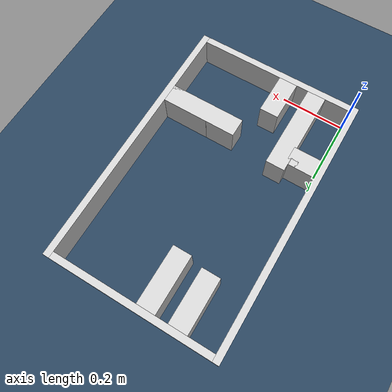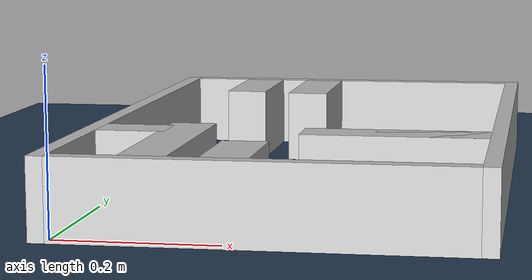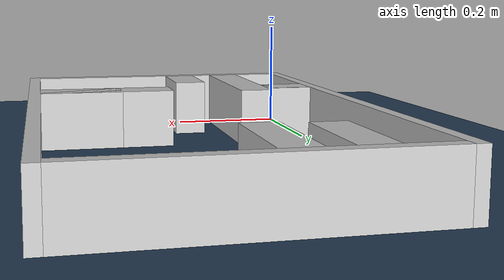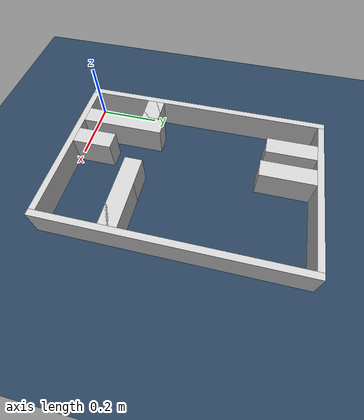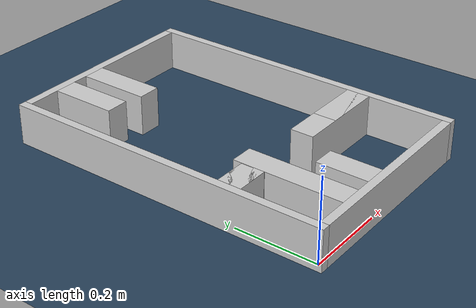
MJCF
<?xml version="1.0" ?>
<mujoco model="generated_real_template">
  <compiler angle="degree"/>
  <option timestep="0.002" integrator="implicitfast" iterations="100" cone="elliptic"/>
  <default>
    <geom density="1"/>
  </default>
  <asset>
    <texture builtin="gradient" height="3072" rgb1="0.3 0.5 0.7" rgb2="0 0 0" type="skybox" width="512"/>
    <texture builtin="checker" height="300" mark="edge" markrgb="0.8 0.8 0.8" name="groundplane" rgb1="0.2 0.3 0.4" rgb2="0.1 0.2 0.3" type="2d" width="300"/>
    <material name="groundplane" reflectance="0.2" texrepeat="5 5" texture="groundplane" texuniform="true"/>
  </asset>
  <worldbody>
    <light dir="0 0 -1" directional="true" pos="0 0 1.5"/>
    <geom name="floor" type="plane" condim="4" friction="0.5 0.005 0.001" material="groundplane" size="0 0 0.05"/>
    <body name="walls">
      <geom name="wall_boundary_left" type="box" condim="4" friction="1.0 0.005 0.0001" rgba="0.8 0.8 0.8 1" pos="-0.010000 0.387500 0.050000" euler="0 0 0.000000" size="0.010000 0.407500 0.050000"/>
      <geom name="wall_boundary_right" type="box" condim="4" friction="1.0 0.005 0.0001" rgba="0.8 0.8 0.8 1" pos="0.500000 0.387500 0.050000" euler="0 0 0.000000" size="0.010000 0.407500 0.050000"/>
      <geom name="wall_boundary_bottom" type="box" condim="4" friction="1.0 0.005 0.0001" rgba="0.8 0.8 0.8 1" pos="0.245000 -0.010000 0.050000" euler="0 0 0.000000" size="0.245000 0.010000 0.050000"/>
      <geom name="wall_boundary_top" type="box" condim="4" friction="1.0 0.005 0.0001" rgba="0.8 0.8 0.8 1" pos="0.245000 0.785000 0.050000" euler="0 0 0.000000" size="0.245000 0.010000 0.050000"/>
      <geom name="wall_inner_1_1" type="box" condim="4" friction="1.0 0.005 0.0001" rgba="0.8 0.8 0.8 1" pos="0.203064 0.062651 0.050000" euler="0 0 90.000000" size="0.062651 0.028500 0.050000"/>
      <geom name="wall_inner_1_2" type="box" condim="4" friction="1.0 0.005 0.0001" rgba="0.8 0.8 0.8 1" pos="0.203064 0.687922 0.050000" euler="0 0 90.000000" size="0.087078 0.028500 0.050000"/>
      <geom name="wall_inner_2_1" type="box" condim="4" friction="1.0 0.005 0.0001" rgba="0.8 0.8 0.8 1" pos="0.043961 0.214902 0.050000" euler="0 0 0.000000" size="0.043961 0.028500 0.050000"/>
      <geom name="wall_inner_2_2" type="box" condim="4" friction="1.0 0.005 0.0001" rgba="0.8 0.8 0.8 1" pos="0.418719 0.214902 0.050000" euler="0 0 0.000000" size="0.071281 0.028500 0.050000"/>
      <geom name="wall_inner_3_1" type="box" condim="4" friction="1.0 0.005 0.0001" rgba="0.8 0.8 0.8 1" pos="0.039396 0.214643 0.050000" euler="0 0 0.000000" size="0.039396 0.028500 0.050000"/>
      <geom name="wall_inner_3_2" type="box" condim="4" friction="1.0 0.005 0.0001" rgba="0.8 0.8 0.8 1" pos="0.373470 0.214643 0.050000" euler="0 0 0.000000" size="0.116530 0.028500 0.050000"/>
      <geom name="wall_inner_4_1" type="box" condim="4" friction="1.0 0.005 0.0001" rgba="0.8 0.8 0.8 1" pos="0.108831 0.132889 0.050000" euler="0 0 90.000000" size="0.132889 0.028500 0.050000"/>
      <geom name="wall_inner_4_2" type="box" condim="4" friction="1.0 0.005 0.0001" rgba="0.8 0.8 0.8 1" pos="0.108831 0.694162 0.050000" euler="0 0 90.000000" size="0.080838 0.028500 0.050000"/>
    </body>
  </worldbody>
</mujoco>
